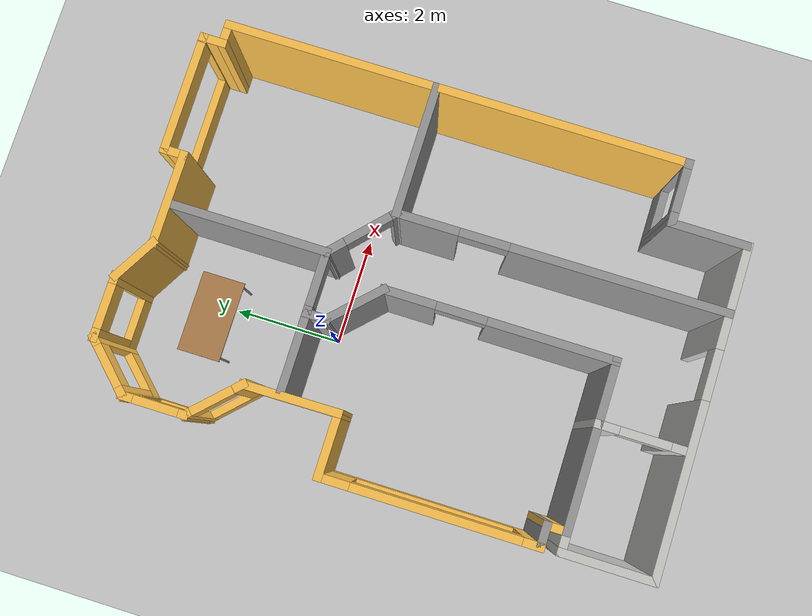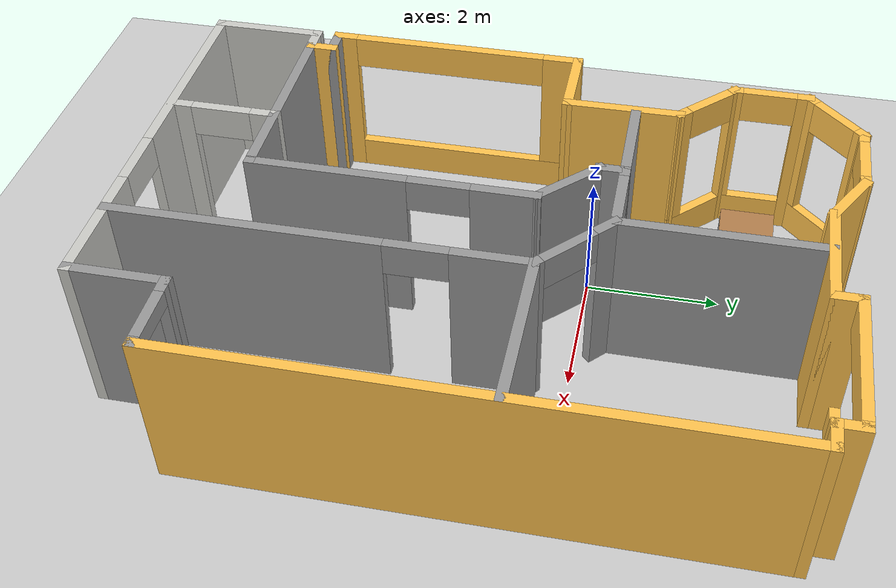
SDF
<sdf version="1.6">
 <world name="default">
  <model name="ground_plane">
   <static>1</static>
   <link name="link">
    <collision name="collision">
     <geometry><plane><normal>0 0 1</normal><size>100 100</size></plane></geometry>
     <surface><friction><ode><mu>100</mu><mu2>50</mu2></ode></friction></surface>
    </collision>
    <visual name="visual">
     <cast_shadows>0</cast_shadows>
     <geometry><plane><normal>0 0 1</normal><size>100 100</size></plane></geometry>
     <material>
      <script><uri>file://media/materials/scripts/gazebo.material</uri><name>Gazebo/Grey</name></script>
     </material>
    </visual>
   </link>
  </model>
  <model name="Building">
   <pose>1.08481 -1.31899 0 0 -0 0</pose>
   <link name="Wall_0">
    <pose>-0.54 -5.07803 0 0 -0 0</pose>
    <visual name="Wall_0_Visual_0">
     <pose>-1.40972 0 1.25 0 -0 0</pose>
     <geometry><box><size>3.18055 0.15 2.5</size></box></geometry>
     <material>
      <script><uri>file://media/materials/scripts/gazebo.material</uri><name>Gazebo/CeilingTiled</name></script>
      <ambient>1 1 1 1</ambient>
     </material>
     <meta><layer>0</layer></meta>
    </visual>
    <collision name="Wall_0_Collision_0">
     <geometry><box><size>3.18055 0.15 2.5</size></box></geometry>
     <pose>-1.40972 0 1.25 0 -0 0</pose>
    </collision>
    <visual name="Wall_0_Visual_1">
     <pose>2.04028 0 1.25 0 -0 0</pose>
     <geometry><box><size>1.91945 0.15 2.5</size></box></geometry>
     <material>
      <script><uri>file://media/materials/scripts/gazebo.material</uri><name>Gazebo/CeilingTiled</name></script>
      <ambient>1 1 1 1</ambient>
     </material>
     <meta><layer>0</layer></meta>
    </visual>
    <collision name="Wall_0_Collision_1">
     <geometry><box><size>1.91945 0.15 2.5</size></box></geometry>
     <pose>2.04028 0 1.25 0 -0 0</pose>
    </collision>
    <visual name="Wall_0_Visual_2">
     <pose>0.630554 0 2.25 0 -0 0</pose>
     <geometry><box><size>0.9 0.15 0.5</size></box></geometry>
     <material>
      <script><uri>file://media/materials/scripts/gazebo.material</uri><name>Gazebo/CeilingTiled</name></script>
      <ambient>1 1 1 1</ambient>
     </material>
     <meta><layer>0</layer></meta>
    </visual>
    <collision name="Wall_0_Collision_2">
     <geometry><box><size>0.9 0.15 0.5</size></box></geometry>
     <pose>0.630554 0 2.25 0 -0 0</pose>
    </collision>
   </link>
   <link name="Wall_1">
    <collision name="Wall_1_Collision">
     <geometry><box><size>1.5 0.15 2.5</size></box></geometry>
     <pose>0 0 1.25 0 -0 0</pose>
    </collision>
    <visual name="Wall_1_Visual">
     <pose>0 0 1.25 0 -0 0</pose>
     <geometry><box><size>1.5 0.15 2.5</size></box></geometry>
     <material>
      <script><uri>file://media/materials/scripts/gazebo.material</uri><name>Gazebo/Grey</name></script>
      <ambient>1 1 1 1</ambient>
     </material>
     <meta><layer>0</layer></meta>
    </visual>
    <pose>2.385 -4.40303 0 0 -0 1.5708</pose>
   </link>
   <link name="Wall_10">
    <pose>-1.85112 5.04697 0 0 -0 3.14159</pose>
    <visual name="Wall_10_Visual_0">
     <pose>-0.517736 0 1.25 0 -0 0</pose>
     <geometry><box><size>0.214528 0.15 2.5</size></box></geometry>
     <material>
      <script><uri>file://media/materials/scripts/gazebo.material</uri><name>Gazebo/Grey</name></script>
      <ambient>1 0.764706 0.305882 1</ambient>
     </material>
     <meta><layer>0</layer></meta>
    </visual>
    <collision name="Wall_10_Collision_0">
     <geometry><box><size>0.214528 0.15 2.5</size></box></geometry>
     <pose>-0.517736 0 1.25 0 -0 0</pose>
    </collision>
    <visual name="Wall_10_Visual_1">
     <pose>0.107264 0 0.25 0 -0 0</pose>
     <geometry><box><size>1.03547 0.15 0.5</size></box></geometry>
     <material>
      <script><uri>file://media/materials/scripts/gazebo.material</uri><name>Gazebo/Grey</name></script>
      <ambient>1 0.764706 0.305882 1</ambient>
     </material>
     <meta><layer>0</layer></meta>
    </visual>
    <collision name="Wall_10_Collision_1">
     <geometry><box><size>1.03547 0.15 0.5</size></box></geometry>
     <pose>0.107264 0 0.25 0 -0 0</pose>
    </collision>
    <visual name="Wall_10_Visual_2">
     <pose>0.507264 0 1.5 0 -0 0</pose>
     <geometry><box><size>0.235472 0.15 2</size></box></geometry>
     <material>
      <script><uri>file://media/materials/scripts/gazebo.material</uri><name>Gazebo/Grey</name></script>
      <ambient>1 0.764706 0.305882 1</ambient>
     </material>
     <meta><layer>0</layer></meta>
    </visual>
    <collision name="Wall_10_Collision_2">
     <geometry><box><size>0.235472 0.15 2</size></box></geometry>
     <pose>0.507264 0 1.5 0 -0 0</pose>
    </collision>
    <visual name="Wall_10_Visual_3">
     <pose>-0.010472 0 2.25 0 -0 0</pose>
     <geometry><box><size>0.8 0.15 0.5</size></box></geometry>
     <material>
      <script><uri>file://media/materials/scripts/gazebo.material</uri><name>Gazebo/Grey</name></script>
      <ambient>1 0.764706 0.305882 1</ambient>
     </material>
     <meta><layer>0</layer></meta>
    </visual>
    <collision name="Wall_10_Collision_3">
     <geometry><box><size>0.8 0.15 0.5</size></box></geometry>
     <pose>-0.010472 0 2.25 0 -0 0</pose>
    </collision>
   </link>
   <link name="Wall_11">
    <pose>-2.79003 4.65806 0 0 0 -2.35619</pose>
    <visual name="Wall_11_Visual_0">
     <pose>-0.516833 0 1.25 0 -0 0</pose>
     <geometry><box><size>0.216334 0.15 2.5</size></box></geometry>
     <material>
      <script><uri>file://media/materials/scripts/gazebo.material</uri><name>Gazebo/Grey</name></script>
      <ambient>1 0.764706 0.305882 1</ambient>
     </material>
     <meta><layer>0</layer></meta>
    </visual>
    <collision name="Wall_11_Collision_0">
     <geometry><box><size>0.216334 0.15 2.5</size></box></geometry>
     <pose>-0.516833 0 1.25 0 -0 0</pose>
    </collision>
    <visual name="Wall_11_Visual_1">
     <pose>0.108167 0 0.25 0 -0 0</pose>
     <geometry><box><size>1.03367 0.15 0.5</size></box></geometry>
     <material>
      <script><uri>file://media/materials/scripts/gazebo.material</uri><name>Gazebo/Grey</name></script>
      <ambient>1 0.764706 0.305882 1</ambient>
     </material>
     <meta><layer>0</layer></meta>
    </visual>
    <collision name="Wall_11_Collision_1">
     <geometry><box><size>1.03367 0.15 0.5</size></box></geometry>
     <pose>0.108167 0 0.25 0 -0 0</pose>
    </collision>
    <visual name="Wall_11_Visual_2">
     <pose>0.508167 0 1.5 0 -0 0</pose>
     <geometry><box><size>0.233666 0.15 2</size></box></geometry>
     <material>
      <script><uri>file://media/materials/scripts/gazebo.material</uri><name>Gazebo/Grey</name></script>
      <ambient>1 0.764706 0.305882 1</ambient>
     </material>
     <meta><layer>0</layer></meta>
    </visual>
    <collision name="Wall_11_Collision_2">
     <geometry><box><size>0.233666 0.15 2</size></box></geometry>
     <pose>0.508167 0 1.5 0 -0 0</pose>
    </collision>
    <visual name="Wall_11_Visual_3">
     <pose>-0.008666 0 2.25 0 -0 0</pose>
     <geometry><box><size>0.8 0.15 0.5</size></box></geometry>
     <material>
      <script><uri>file://media/materials/scripts/gazebo.material</uri><name>Gazebo/Grey</name></script>
      <ambient>1 0.764706 0.305882 1</ambient>
     </material>
     <meta><layer>0</layer></meta>
    </visual>
    <collision name="Wall_11_Collision_3">
     <geometry><box><size>0.8 0.15 0.5</size></box></geometry>
     <pose>-0.008666 0 2.25 0 -0 0</pose>
    </collision>
   </link>
   <link name="Wall_12">
    <pose>-3.17894 3.71915 0 0 0 -1.5708</pose>
    <visual name="Wall_12_Visual_0">
     <pose>-0.493695 0 1.25 0 -0 0</pose>
     <geometry><box><size>0.262609 0.15 2.5</size></box></geometry>
     <material>
      <script><uri>file://media/materials/scripts/gazebo.material</uri><name>Gazebo/Grey</name></script>
      <ambient>1 0.764706 0.305882 1</ambient>
     </material>
     <meta><layer>0</layer></meta>
    </visual>
    <collision name="Wall_12_Collision_0">
     <geometry><box><size>0.262609 0.15 2.5</size></box></geometry>
     <pose>-0.493695 0 1.25 0 -0 0</pose>
    </collision>
    <visual name="Wall_12_Visual_1">
     <pose>0.131305 0 0.25 0 -0 0</pose>
     <geometry><box><size>0.987391 0.15 0.5</size></box></geometry>
     <material>
      <script><uri>file://media/materials/scripts/gazebo.material</uri><name>Gazebo/Grey</name></script>
      <ambient>1 0.764706 0.305882 1</ambient>
     </material>
     <meta><layer>0</layer></meta>
    </visual>
    <collision name="Wall_12_Collision_1">
     <geometry><box><size>0.987391 0.15 0.5</size></box></geometry>
     <pose>0.131305 0 0.25 0 -0 0</pose>
    </collision>
    <visual name="Wall_12_Visual_2">
     <pose>0.531305 0 1.5 0 -0 0</pose>
     <geometry><box><size>0.187391 0.15 2</size></box></geometry>
     <material>
      <script><uri>file://media/materials/scripts/gazebo.material</uri><name>Gazebo/Grey</name></script>
      <ambient>1 0.764706 0.305882 1</ambient>
     </material>
     <meta><layer>0</layer></meta>
    </visual>
    <collision name="Wall_12_Collision_2">
     <geometry><box><size>0.187391 0.15 2</size></box></geometry>
     <pose>0.531305 0 1.5 0 -0 0</pose>
    </collision>
    <visual name="Wall_12_Visual_3">
     <pose>0.037609 0 2.25 0 -0 0</pose>
     <geometry><box><size>0.8 0.15 0.5</size></box></geometry>
     <material>
      <script><uri>file://media/materials/scripts/gazebo.material</uri><name>Gazebo/Grey</name></script>
      <ambient>1 0.764706 0.305882 1</ambient>
     </material>
     <meta><layer>0</layer></meta>
    </visual>
    <collision name="Wall_12_Collision_3">
     <geometry><box><size>0.8 0.15 0.5</size></box></geometry>
     <pose>0.037609 0 2.25 0 -0 0</pose>
    </collision>
   </link>
   <link name="Wall_13">
    <pose>-2.79003 2.78024 0 0 0 -0.785398</pose>
    <visual name="Wall_13_Visual_0">
     <pose>-0.532603 0 1.25 0 -0 0</pose>
     <geometry><box><size>0.184794 0.15 2.5</size></box></geometry>
     <material>
      <script><uri>file://media/materials/scripts/gazebo.material</uri><name>Gazebo/Grey</name></script>
      <ambient>1 0.764706 0.305882 1</ambient>
     </material>
     <meta><layer>0</layer></meta>
    </visual>
    <collision name="Wall_13_Collision_0">
     <geometry><box><size>0.184794 0.15 2.5</size></box></geometry>
     <pose>-0.532603 0 1.25 0 -0 0</pose>
    </collision>
    <visual name="Wall_13_Visual_1">
     <pose>0.092397 0 0.25 0 -0 0</pose>
     <geometry><box><size>1.06521 0.15 0.5</size></box></geometry>
     <material>
      <script><uri>file://media/materials/scripts/gazebo.material</uri><name>Gazebo/Grey</name></script>
      <ambient>1 0.764706 0.305882 1</ambient>
     </material>
     <meta><layer>0</layer></meta>
    </visual>
    <collision name="Wall_13_Collision_1">
     <geometry><box><size>1.06521 0.15 0.5</size></box></geometry>
     <pose>0.092397 0 0.25 0 -0 0</pose>
    </collision>
    <visual name="Wall_13_Visual_2">
     <pose>0.492397 0 1.5 0 -0 0</pose>
     <geometry><box><size>0.265206 0.15 2</size></box></geometry>
     <material>
      <script><uri>file://media/materials/scripts/gazebo.material</uri><name>Gazebo/Grey</name></script>
      <ambient>1 0.764706 0.305882 1</ambient>
     </material>
     <meta><layer>0</layer></meta>
    </visual>
    <collision name="Wall_13_Collision_2">
     <geometry><box><size>0.265206 0.15 2</size></box></geometry>
     <pose>0.492397 0 1.5 0 -0 0</pose>
    </collision>
    <visual name="Wall_13_Visual_3">
     <pose>-0.040206 0 2.25 0 -0 0</pose>
     <geometry><box><size>0.8 0.15 0.5</size></box></geometry>
     <material>
      <script><uri>file://media/materials/scripts/gazebo.material</uri><name>Gazebo/Grey</name></script>
      <ambient>1 0.764706 0.305882 1</ambient>
     </material>
     <meta><layer>0</layer></meta>
    </visual>
    <collision name="Wall_13_Collision_3">
     <geometry><box><size>0.8 0.15 0.5</size></box></geometry>
     <pose>-0.040206 0 2.25 0 -0 0</pose>
    </collision>
   </link>
   <link name="Wall_14">
    <collision name="Wall_14_Collision">
     <geometry><box><size>1.81944 0.15 2.5</size></box></geometry>
     <pose>0 0 1.25 0 -0 0</pose>
    </collision>
    <visual name="Wall_14_Visual">
     <pose>0 0 1.25 0 -0 0</pose>
     <geometry><box><size>1.81944 0.15 2.5</size></box></geometry>
     <material>
      <script><uri>file://media/materials/scripts/gazebo.material</uri><name>Gazebo/Grey</name></script>
      <ambient>1 0.764706 0.305882 1</ambient>
     </material>
     <meta><layer>0</layer></meta>
    </visual>
    <pose>-2.39306 1.55665 0 0 0 -1.56114</pose>
   </link>
   <link name="Wall_16">
    <collision name="Wall_16_Collision">
     <geometry><box><size>1.75 0.15 2.5</size></box></geometry>
     <pose>0 0 1.25 0 -0 0</pose>
    </collision>
    <visual name="Wall_16_Visual">
     <pose>0 0 1.25 0 -0 0</pose>
     <geometry><box><size>1.75 0.15 2.5</size></box></geometry>
     <material>
      <script><uri>file://media/materials/scripts/gazebo.material</uri><name>Gazebo/CeilingTiled</name></script>
      <ambient>1 0.764706 0.305882 1</ambient>
     </material>
     <meta><layer>0</layer></meta>
    </visual>
    <pose>-3.465 -4.27803 0 0 -0 1.5708</pose>
   </link>
   <link name="Wall_17">
    <collision name="Wall_17_Collision">
     <geometry><box><size>0.5 0.15 2.5</size></box></geometry>
     <pose>0 0 1.25 0 -0 0</pose>
    </collision>
    <visual name="Wall_17_Visual">
     <pose>0 0 1.25 0 -0 0</pose>
     <geometry><box><size>0.5 0.15 2.5</size></box></geometry>
     <material>
      <script><uri>file://media/materials/scripts/gazebo.material</uri><name>Gazebo/CeilingTiled</name></script>
      <ambient>1 0.764706 0.305882 1</ambient>
     </material>
     <meta><layer>0</layer></meta>
    </visual>
    <pose>-3.29 -3.47803 0 0 -0 0</pose>
   </link>
   <link name="Wall_18">
    <collision name="Wall_18_Collision">
     <geometry><box><size>0.5 0.15 2.5</size></box></geometry>
     <pose>0 0 1.25 0 -0 0</pose>
    </collision>
    <visual name="Wall_18_Visual">
     <pose>0 0 1.25 0 -0 0</pose>
     <geometry><box><size>0.5 0.15 2.5</size></box></geometry>
     <material>
      <script><uri>file://media/materials/scripts/gazebo.material</uri><name>Gazebo/Grey</name></script>
      <ambient>1 0.764706 0.305882 1</ambient>
     </material>
     <meta><layer>0</layer></meta>
    </visual>
    <pose>-3.115 -3.30303 0 0 -0 1.5708</pose>
   </link>
   <link name="Wall_19">
    <collision name="Wall_19_Collision">
     <geometry><box><size>0.5 0.15 2.5</size></box></geometry>
     <pose>0 0 1.25 0 -0 0</pose>
    </collision>
    <visual name="Wall_19_Visual">
     <pose>0 0 1.25 0 -0 0</pose>
     <geometry><box><size>0.5 0.15 2.5</size></box></geometry>
     <material>
      <script><uri>file://media/materials/scripts/gazebo.material</uri><name>Gazebo/Grey</name></script>
      <ambient>1 1 1 1</ambient>
     </material>
     <meta><layer>0</layer></meta>
    </visual>
    <pose>-3.29 -3.12803 0 0 -0 3.14159</pose>
   </link>
   <link name="Wall_2">
    <pose>2.935 -3.72803 0 0 -0 0</pose>
    <visual name="Wall_2_Visual_0">
     <pose>-0.486696 0 1.25 0 -0 0</pose>
     <geometry><box><size>0.276608 0.15 2.5</size></box></geometry>
     <material>
      <script><uri>file://media/materials/scripts/gazebo.material</uri><name>Gazebo/Grey</name></script>
      <ambient>1 1 1 1</ambient>
     </material>
     <meta><layer>0</layer></meta>
    </visual>
    <collision name="Wall_2_Collision_0">
     <geometry><box><size>0.276608 0.15 2.5</size></box></geometry>
     <pose>-0.486696 0 1.25 0 -0 0</pose>
    </collision>
    <visual name="Wall_2_Visual_1">
     <pose>0.138304 0 0.375 0 -0 0</pose>
     <geometry><box><size>0.973392 0.15 0.75</size></box></geometry>
     <material>
      <script><uri>file://media/materials/scripts/gazebo.material</uri><name>Gazebo/Grey</name></script>
      <ambient>1 1 1 1</ambient>
     </material>
     <meta><layer>0</layer></meta>
    </visual>
    <collision name="Wall_2_Collision_1">
     <geometry><box><size>0.973392 0.15 0.75</size></box></geometry>
     <pose>0.138304 0 0.375 0 -0 0</pose>
    </collision>
    <visual name="Wall_2_Visual_2">
     <pose>0.538304 0 1.625 0 -0 0</pose>
     <geometry><box><size>0.173392 0.15 1.75</size></box></geometry>
     <material>
      <script><uri>file://media/materials/scripts/gazebo.material</uri><name>Gazebo/Grey</name></script>
      <ambient>1 1 1 1</ambient>
     </material>
     <meta><layer>0</layer></meta>
    </visual>
    <collision name="Wall_2_Collision_2">
     <geometry><box><size>0.173392 0.15 1.75</size></box></geometry>
     <pose>0.538304 0 1.625 0 -0 0</pose>
    </collision>
    <visual name="Wall_2_Visual_3">
     <pose>0.051608 0 2.375 0 -0 0</pose>
     <geometry><box><size>0.8 0.15 0.25</size></box></geometry>
     <material>
      <script><uri>file://media/materials/scripts/gazebo.material</uri><name>Gazebo/Grey</name></script>
      <ambient>1 1 1 1</ambient>
     </material>
     <meta><layer>0</layer></meta>
    </visual>
    <collision name="Wall_2_Collision_3">
     <geometry><box><size>0.8 0.15 0.25</size></box></geometry>
     <pose>0.051608 0 2.375 0 -0 0</pose>
    </collision>
   </link>
   <link name="Wall_20">
    <pose>-3.485 -1.20303 0 0 -0 1.5708</pose>
    <visual name="Wall_20_Visual_0">
     <pose>-1.80879 0 1.25 0 -0 0</pose>
     <geometry><box><size>0.382416 0.15 2.5</size></box></geometry>
     <material>
      <script><uri>file://media/materials/scripts/gazebo.material</uri><name>Gazebo/Grey</name></script>
      <ambient>1 0.764706 0.305882 1</ambient>
     </material>
     <meta><layer>0</layer></meta>
    </visual>
    <collision name="Wall_20_Collision_0">
     <geometry><box><size>0.382416 0.15 2.5</size></box></geometry>
     <pose>-1.80879 0 1.25 0 -0 0</pose>
    </collision>
    <visual name="Wall_20_Visual_1">
     <pose>0.191208 0 0.25 0 -0 0</pose>
     <geometry><box><size>3.61758 0.15 0.5</size></box></geometry>
     <material>
      <script><uri>file://media/materials/scripts/gazebo.material</uri><name>Gazebo/Grey</name></script>
      <ambient>1 0.764706 0.305882 1</ambient>
     </material>
     <meta><layer>0</layer></meta>
    </visual>
    <collision name="Wall_20_Collision_1">
     <geometry><box><size>3.61758 0.15 0.5</size></box></geometry>
     <pose>0.191208 0 0.25 0 -0 0</pose>
    </collision>
    <visual name="Wall_20_Visual_2">
     <pose>1.69121 0 1.5 0 -0 0</pose>
     <geometry><box><size>0.617584 0.15 2</size></box></geometry>
     <material>
      <script><uri>file://media/materials/scripts/gazebo.material</uri><name>Gazebo/Grey</name></script>
      <ambient>1 0.764706 0.305882 1</ambient>
     </material>
     <meta><layer>0</layer></meta>
    </visual>
    <collision name="Wall_20_Collision_2">
     <geometry><box><size>0.617584 0.15 2</size></box></geometry>
     <pose>1.69121 0 1.5 0 -0 0</pose>
    </collision>
    <visual name="Wall_20_Visual_3">
     <pose>-0.117584 0 2.25 0 -0 0</pose>
     <geometry><box><size>3 0.15 0.5</size></box></geometry>
     <material>
      <script><uri>file://media/materials/scripts/gazebo.material</uri><name>Gazebo/Grey</name></script>
      <ambient>1 0.764706 0.305882 1</ambient>
     </material>
     <meta><layer>0</layer></meta>
    </visual>
    <collision name="Wall_20_Collision_3">
     <geometry><box><size>3 0.15 0.5</size></box></geometry>
     <pose>-0.117584 0 2.25 0 -0 0</pose>
    </collision>
   </link>
   <link name="Wall_22">
    <collision name="Wall_22_Collision">
     <geometry><box><size>1.25 0.15 2.5</size></box></geometry>
     <pose>0 0 1.25 0 -0 0</pose>
    </collision>
    <visual name="Wall_22_Visual">
     <pose>0 0 1.25 0 -0 0</pose>
     <geometry><box><size>1.25 0.15 2.5</size></box></geometry>
     <material>
      <script><uri>file://media/materials/scripts/gazebo.material</uri><name>Gazebo/Grey</name></script>
      <ambient>1 0.764706 0.305882 1</ambient>
     </material>
     <meta><layer>0</layer></meta>
    </visual>
    <pose>-2.935 0.721967 0 0 -0 0</pose>
   </link>
   <link name="Wall_26">
    <collision name="Wall_26_Collision">
     <geometry><box><size>2 0.15 2.5</size></box></geometry>
     <pose>0 0 1.25 0 -0 0</pose>
    </collision>
    <visual name="Wall_26_Visual">
     <pose>0 0 1.25 0 -0 0</pose>
     <geometry><box><size>2 0.15 2.5</size></box></geometry>
     <material>
      <script><uri>file://media/materials/scripts/gazebo.material</uri><name>Gazebo/Grey</name></script>
      <ambient>1 1 1 1</ambient>
     </material>
     <meta><layer>0</layer></meta>
    </visual>
    <pose>-2.19 -3.47803 0 0 -0 0</pose>
   </link>
   <link name="Wall_27">
    <pose>-1.265 -4.27803 0 0 0 -1.5708</pose>
    <visual name="Wall_27_Visual_0">
     <pose>-0.653637 0 1.25 0 -0 0</pose>
     <geometry><box><size>0.442727 0.15 2.5</size></box></geometry>
     <material>
      <script><uri>file://media/materials/scripts/gazebo.material</uri><name>Gazebo/CeilingTiled</name></script>
      <ambient>1 1 1 1</ambient>
     </material>
     <meta><layer>0</layer></meta>
    </visual>
    <collision name="Wall_27_Collision_0">
     <geometry><box><size>0.442727 0.15 2.5</size></box></geometry>
     <pose>-0.653637 0 1.25 0 -0 0</pose>
    </collision>
    <visual name="Wall_27_Visual_1">
     <pose>0.671363 0 1.25 0 -0 0</pose>
     <geometry><box><size>0.407273 0.15 2.5</size></box></geometry>
     <material>
      <script><uri>file://media/materials/scripts/gazebo.material</uri><name>Gazebo/CeilingTiled</name></script>
      <ambient>1 1 1 1</ambient>
     </material>
     <meta><layer>0</layer></meta>
    </visual>
    <collision name="Wall_27_Collision_1">
     <geometry><box><size>0.407273 0.15 2.5</size></box></geometry>
     <pose>0.671363 0 1.25 0 -0 0</pose>
    </collision>
    <visual name="Wall_27_Visual_2">
     <pose>0.017727 0 2.25 0 -0 0</pose>
     <geometry><box><size>0.9 0.15 0.5</size></box></geometry>
     <material>
      <script><uri>file://media/materials/scripts/gazebo.material</uri><name>Gazebo/CeilingTiled</name></script>
      <ambient>1 1 1 1</ambient>
     </material>
     <meta><layer>0</layer></meta>
    </visual>
    <collision name="Wall_27_Collision_2">
     <geometry><box><size>0.9 0.15 0.5</size></box></geometry>
     <pose>0.017727 0 2.25 0 -0 0</pose>
    </collision>
   </link>
   <link name="Wall_29">
    <collision name="Wall_29_Collision">
     <geometry><box><size>1.25 0.15 2.5</size></box></geometry>
     <pose>0 0 1.25 0 -0 0</pose>
    </collision>
    <visual name="Wall_29_Visual">
     <pose>0 0 1.25 0 -0 0</pose>
     <geometry><box><size>1.25 0.15 2.5</size></box></geometry>
     <material>
      <script><uri>file://media/materials/scripts/gazebo.material</uri><name>Gazebo/Grey</name></script>
      <ambient>1 1 1 1</ambient>
     </material>
     <meta><layer>0</layer></meta>
    </visual>
    <pose>-0.715 -3.47803 0 0 -0 0</pose>
   </link>
   <link name="Wall_3">
    <collision name="Wall_3_Collision">
     <geometry><box><size>8.5 0.15 2.5</size></box></geometry>
     <pose>0 0 1.25 0 -0 0</pose>
    </collision>
    <visual name="Wall_3_Visual">
     <pose>0 0 1.25 0 -0 0</pose>
     <geometry><box><size>8.5 0.15 2.5</size></box></geometry>
     <material>
      <script><uri>file://media/materials/scripts/gazebo.material</uri><name>Gazebo/Grey</name></script>
      <ambient>1 0.764706 0.305882 1</ambient>
     </material>
     <meta><layer>0</layer></meta>
    </visual>
    <pose>3.485 0.446967 0 0 -0 1.5708</pose>
   </link>
   <link name="Wall_30">
    <pose>-0.165 -1.42803 0 0 -0 1.5708</pose>
    <visual name="Wall_30_Visual_0">
     <pose>-0.949214 0 1.25 0 -0 0</pose>
     <geometry><box><size>2.35157 0.15 2.5</size></box></geometry>
     <material>
      <script><uri>file://media/materials/scripts/gazebo.material</uri><name>Gazebo/Grey</name></script>
      <ambient>1 1 1 1</ambient>
     </material>
     <meta><layer>0</layer></meta>
    </visual>
    <collision name="Wall_30_Collision_0">
     <geometry><box><size>2.35157 0.15 2.5</size></box></geometry>
     <pose>-0.949214 0 1.25 0 -0 0</pose>
    </collision>
    <visual name="Wall_30_Visual_1">
     <pose>1.62579 0 1.25 0 -0 0</pose>
     <geometry><box><size>0.998427 0.15 2.5</size></box></geometry>
     <material>
      <script><uri>file://media/materials/scripts/gazebo.material</uri><name>Gazebo/Grey</name></script>
      <ambient>1 1 1 1</ambient>
     </material>
     <meta><layer>0</layer></meta>
    </visual>
    <collision name="Wall_30_Collision_1">
     <geometry><box><size>0.998427 0.15 2.5</size></box></geometry>
     <pose>1.62579 0 1.25 0 -0 0</pose>
    </collision>
    <visual name="Wall_30_Visual_2">
     <pose>0.676573 0 2.25 0 -0 0</pose>
     <geometry><box><size>0.9 0.15 0.5</size></box></geometry>
     <material>
      <script><uri>file://media/materials/scripts/gazebo.material</uri><name>Gazebo/Grey</name></script>
      <ambient>1 1 1 1</ambient>
     </material>
     <meta><layer>0</layer></meta>
    </visual>
    <collision name="Wall_30_Collision_2">
     <geometry><box><size>0.9 0.15 0.5</size></box></geometry>
     <pose>0.676573 0 2.25 0 -0 0</pose>
    </collision>
   </link>
   <link name="Wall_31">
    <collision name="Wall_31_Collision">
     <geometry><box><size>1.25 0.15 2.5</size></box></geometry>
     <pose>0 0 1.25 0 -0 0</pose>
    </collision>
    <visual name="Wall_31_Visual">
     <pose>0 0 1.25 0 -0 0</pose>
     <geometry><box><size>1.25 0.15 2.5</size></box></geometry>
     <material>
      <script><uri>file://media/materials/scripts/gazebo.material</uri><name>Gazebo/Grey</name></script>
      <ambient>1 1 1 1</ambient>
     </material>
     <meta><layer>0</layer></meta>
    </visual>
    <pose>-0.553909 1.01088 0 0 -0 2.35619</pose>
   </link>
   <link name="Wall_32">
    <collision name="Wall_32_Collision">
     <geometry><box><size>0.5 0.15 2.5</size></box></geometry>
     <pose>0 0 1.25 0 -0 0</pose>
    </collision>
    <visual name="Wall_32_Visual">
     <pose>0 0 1.25 0 -0 0</pose>
     <geometry><box><size>0.5 0.15 2.5</size></box></geometry>
     <material>
      <script><uri>file://media/materials/scripts/gazebo.material</uri><name>Gazebo/Grey</name></script>
      <ambient>1 1 1 1</ambient>
     </material>
     <meta><layer>0</layer></meta>
    </visual>
    <pose>-0.942818 1.57479 0 0 -0 1.5708</pose>
   </link>
   <link name="Wall_33">
    <collision name="Wall_33_Collision">
     <geometry><box><size>1.5 0.15 2.5</size></box></geometry>
     <pose>0 0 1.25 0 -0 0</pose>
    </collision>
    <visual name="Wall_33_Visual">
     <pose>0 0 1.25 0 -0 0</pose>
     <geometry><box><size>1.5 0.15 2.5</size></box></geometry>
     <material>
      <script><uri>file://media/materials/scripts/gazebo.material</uri><name>Gazebo/Grey</name></script>
      <ambient>1 1 1 1</ambient>
     </material>
     <meta><layer>0</layer></meta>
    </visual>
    <pose>-1.61782 1.74978 0 0 -0 3.14159</pose>
   </link>
   <link name="Wall_35">
    <pose>-0.392818 1.74978 0 0 -0 0</pose>
    <visual name="Wall_35_Visual_0">
     <pose>-0.524612 0 1.25 0 -0 0</pose>
     <geometry><box><size>0.200777 0.15 2.5</size></box></geometry>
     <material>
      <script><uri>file://media/materials/scripts/gazebo.material</uri><name>Gazebo/Grey</name></script>
      <ambient>1 1 1 1</ambient>
     </material>
     <meta><layer>0</layer></meta>
    </visual>
    <collision name="Wall_35_Collision_0">
     <geometry><box><size>0.200777 0.15 2.5</size></box></geometry>
     <pose>-0.524612 0 1.25 0 -0 0</pose>
    </collision>
    <visual name="Wall_35_Visual_1">
     <pose>0.550388 0 1.25 0 -0 0</pose>
     <geometry><box><size>0.149223 0.15 2.5</size></box></geometry>
     <material>
      <script><uri>file://media/materials/scripts/gazebo.material</uri><name>Gazebo/Grey</name></script>
      <ambient>1 1 1 1</ambient>
     </material>
     <meta><layer>0</layer></meta>
    </visual>
    <collision name="Wall_35_Collision_1">
     <geometry><box><size>0.149223 0.15 2.5</size></box></geometry>
     <pose>0.550388 0 1.25 0 -0 0</pose>
    </collision>
    <visual name="Wall_35_Visual_2">
     <pose>0.025777 0 2.25 0 -0 0</pose>
     <geometry><box><size>0.9 0.15 0.5</size></box></geometry>
     <material>
      <script><uri>file://media/materials/scripts/gazebo.material</uri><name>Gazebo/Grey</name></script>
      <ambient>1 1 1 1</ambient>
     </material>
     <meta><layer>0</layer></meta>
    </visual>
    <collision name="Wall_35_Collision_2">
     <geometry><box><size>0.9 0.15 0.5</size></box></geometry>
     <pose>0.025777 0 2.25 0 -0 0</pose>
    </collision>
   </link>
   <link name="Wall_36">
    <collision name="Wall_36_Collision">
     <geometry><box><size>3 0.15 2.5</size></box></geometry>
     <pose>0 0 1.25 0 -0 0</pose>
    </collision>
    <visual name="Wall_36_Visual">
     <pose>0 0 1.25 0 -0 0</pose>
     <geometry><box><size>3 0.15 2.5</size></box></geometry>
     <material>
      <script><uri>file://media/materials/scripts/gazebo.material</uri><name>Gazebo/Grey</name></script>
      <ambient>1 1 1 1</ambient>
     </material>
     <meta><layer>0</layer></meta>
    </visual>
    <pose>0.157182 3.17478 0 0 -0 1.5708</pose>
   </link>
   <link name="Wall_38">
    <pose>1.16672 -2.12643 0 0 -0 1.57466</pose>
    <visual name="Wall_38_Visual_0">
     <pose>-1.04783 0 1.25 0 -0 0</pose>
     <geometry><box><size>3.93688 0.15 2.5</size></box></geometry>
     <material>
      <script><uri>file://media/materials/scripts/gazebo.material</uri><name>Gazebo/Grey</name></script>
      <ambient>1 1 1 1</ambient>
     </material>
     <meta><layer>0</layer></meta>
    </visual>
    <collision name="Wall_38_Collision_0">
     <geometry><box><size>3.93688 0.15 2.5</size></box></geometry>
     <pose>-1.04783 0 1.25 0 -0 0</pose>
    </collision>
    <visual name="Wall_38_Visual_1">
     <pose>2.41844 0 1.25 0 -0 0</pose>
     <geometry><box><size>1.19567 0.15 2.5</size></box></geometry>
     <material>
      <script><uri>file://media/materials/scripts/gazebo.material</uri><name>Gazebo/Grey</name></script>
      <ambient>1 1 1 1</ambient>
     </material>
     <meta><layer>0</layer></meta>
    </visual>
    <collision name="Wall_38_Collision_1">
     <geometry><box><size>1.19567 0.15 2.5</size></box></geometry>
     <pose>2.41844 0 1.25 0 -0 0</pose>
    </collision>
    <visual name="Wall_38_Visual_2">
     <pose>1.37061 0 2.25 0 -0 0</pose>
     <geometry><box><size>0.9 0.15 0.5</size></box></geometry>
     <material>
      <script><uri>file://media/materials/scripts/gazebo.material</uri><name>Gazebo/Grey</name></script>
      <ambient>1 1 1 1</ambient>
     </material>
     <meta><layer>0</layer></meta>
    </visual>
    <collision name="Wall_38_Collision_2">
     <geometry><box><size>0.9 0.15 0.5</size></box></geometry>
     <pose>1.37061 0 2.25 0 -0 0</pose>
    </collision>
   </link>
   <link name="Wall_39">
    <pose>0.656263 1.2823 0 0 -0 2.38888</pose>
    <visual name="Wall_39_Visual_0">
     <pose>-0.666538 0 1.25 0 -0 0</pose>
     <geometry><box><size>0.184579 0.15 2.5</size></box></geometry>
     <material>
      <script><uri>file://media/materials/scripts/gazebo.material</uri><name>Gazebo/Grey</name></script>
      <ambient>1 1 1 1</ambient>
     </material>
     <meta><layer>0</layer></meta>
    </visual>
    <collision name="Wall_39_Collision_0">
     <geometry><box><size>0.184579 0.15 2.5</size></box></geometry>
     <pose>-0.666538 0 1.25 0 -0 0</pose>
    </collision>
    <visual name="Wall_39_Visual_1">
     <pose>0.542289 0 1.25 0 -0 0</pose>
     <geometry><box><size>0.433076 0.15 2.5</size></box></geometry>
     <material>
      <script><uri>file://media/materials/scripts/gazebo.material</uri><name>Gazebo/Grey</name></script>
      <ambient>1 1 1 1</ambient>
     </material>
     <meta><layer>0</layer></meta>
    </visual>
    <collision name="Wall_39_Collision_1">
     <geometry><box><size>0.433076 0.15 2.5</size></box></geometry>
     <pose>0.542289 0 1.25 0 -0 0</pose>
    </collision>
    <visual name="Wall_39_Visual_2">
     <pose>-0.124249 0 2.25 0 -0 0</pose>
     <geometry><box><size>0.9 0.15 0.5</size></box></geometry>
     <material>
      <script><uri>file://media/materials/scripts/gazebo.material</uri><name>Gazebo/Grey</name></script>
      <ambient>1 1 1 1</ambient>
     </material>
     <meta><layer>0</layer></meta>
    </visual>
    <collision name="Wall_39_Collision_2">
     <geometry><box><size>0.9 0.15 0.5</size></box></geometry>
     <pose>-0.124249 0 2.25 0 -0 0</pose>
    </collision>
   </link>
   <link name="Wall_4">
    <collision name="Wall_4_Collision">
     <geometry><box><size>0.5 0.15 2.5</size></box></geometry>
     <pose>0 0 1.25 0 -0 0</pose>
    </collision>
    <visual name="Wall_4_Visual">
     <pose>0 0 1.25 0 -0 0</pose>
     <geometry><box><size>0.5 0.15 2.5</size></box></geometry>
     <material>
      <script><uri>file://media/materials/scripts/gazebo.material</uri><name>Gazebo/Grey</name></script>
      <ambient>1 0.764706 0.305882 1</ambient>
     </material>
     <meta><layer>0</layer></meta>
    </visual>
    <pose>3.31 4.62197 0 0 -0 3.14159</pose>
   </link>
   <link name="Wall_41">
    <collision name="Wall_41_Collision">
     <geometry><box><size>2.47946 0.15 2.5</size></box></geometry>
     <pose>0 0 1.25 0 -0 0</pose>
    </collision>
    <visual name="Wall_41_Visual">
     <pose>0 0 1.25 0 -0 0</pose>
     <geometry><box><size>2.47946 0.15 2.5</size></box></geometry>
     <material>
      <script><uri>file://media/materials/scripts/gazebo.material</uri><name>Gazebo/Grey</name></script>
      <ambient>1 1 1 1</ambient>
     </material>
     <meta><layer>0</layer></meta>
    </visual>
    <pose>2.32007 0.817744 0 0 0 -0.000281</pose>
   </link>
   <link name="Wall_5">
    <collision name="Wall_5_Collision">
     <geometry><box><size>0.5 0.15 2.5</size></box></geometry>
     <pose>0 0 1.25 0 -0 0</pose>
    </collision>
    <visual name="Wall_5_Visual">
     <pose>0 0 1.25 0 -0 0</pose>
     <geometry><box><size>0.5 0.15 2.5</size></box></geometry>
     <material>
      <script><uri>file://media/materials/scripts/gazebo.material</uri><name>Gazebo/Grey</name></script>
      <ambient>1 0.764706 0.305882 1</ambient>
     </material>
     <meta><layer>0</layer></meta>
    </visual>
    <pose>3.135 4.79697 0 0 -0 1.5708</pose>
   </link>
   <link name="Wall_6">
    <pose>2.085 4.97197 0 0 -0 3.14159</pose>
    <visual name="Wall_6_Visual_0">
     <pose>-1.04107 0 1.25 0 -0 0</pose>
     <geometry><box><size>0.167856 0.15 2.5</size></box></geometry>
     <material>
      <script><uri>file://media/materials/scripts/gazebo.material</uri><name>Gazebo/Grey</name></script>
      <ambient>1 0.764706 0.305882 1</ambient>
     </material>
     <meta><layer>0</layer></meta>
    </visual>
    <collision name="Wall_6_Collision_0">
     <geometry><box><size>0.167856 0.15 2.5</size></box></geometry>
     <pose>-1.04107 0 1.25 0 -0 0</pose>
    </collision>
    <visual name="Wall_6_Visual_1">
     <pose>0.083928 0 0.25 0 -0 0</pose>
     <geometry><box><size>2.08214 0.15 0.5</size></box></geometry>
     <material>
      <script><uri>file://media/materials/scripts/gazebo.material</uri><name>Gazebo/Grey</name></script>
      <ambient>1 0.764706 0.305882 1</ambient>
     </material>
     <meta><layer>0</layer></meta>
    </visual>
    <collision name="Wall_6_Collision_1">
     <geometry><box><size>2.08214 0.15 0.5</size></box></geometry>
     <pose>0.083928 0 0.25 0 -0 0</pose>
    </collision>
    <visual name="Wall_6_Visual_2">
     <pose>1.08393 0 1.5 0 -0 0</pose>
     <geometry><box><size>0.082144 0.15 2</size></box></geometry>
     <material>
      <script><uri>file://media/materials/scripts/gazebo.material</uri><name>Gazebo/Grey</name></script>
      <ambient>1 0.764706 0.305882 1</ambient>
     </material>
     <meta><layer>0</layer></meta>
    </visual>
    <collision name="Wall_6_Collision_2">
     <geometry><box><size>0.082144 0.15 2</size></box></geometry>
     <pose>1.08393 0 1.5 0 -0 0</pose>
    </collision>
    <visual name="Wall_6_Visual_3">
     <pose>0.042856 0 2.25 0 -0 0</pose>
     <geometry><box><size>2 0.15 0.5</size></box></geometry>
     <material>
      <script><uri>file://media/materials/scripts/gazebo.material</uri><name>Gazebo/Grey</name></script>
      <ambient>1 0.764706 0.305882 1</ambient>
     </material>
     <meta><layer>0</layer></meta>
    </visual>
    <collision name="Wall_6_Collision_3">
     <geometry><box><size>2 0.15 0.5</size></box></geometry>
     <pose>0.042856 0 2.25 0 -0 0</pose>
    </collision>
   </link>
   <link name="Wall_7">
    <collision name="Wall_7_Collision">
     <geometry><box><size>0.5 0.15 2.5</size></box></geometry>
     <pose>0 0 1.25 0 -0 0</pose>
    </collision>
    <visual name="Wall_7_Visual">
     <pose>0 0 1.25 0 -0 0</pose>
     <geometry><box><size>0.5 0.15 2.5</size></box></geometry>
     <material>
      <script><uri>file://media/materials/scripts/gazebo.material</uri><name>Gazebo/Grey</name></script>
      <ambient>1 0.764706 0.305882 1</ambient>
     </material>
     <meta><layer>0</layer></meta>
    </visual>
    <pose>1.035 4.79697 0 0 0 -1.5708</pose>
   </link>
   <link name="Wall_8">
    <collision name="Wall_8_Collision">
     <geometry><box><size>1.75 0.15 2.5</size></box></geometry>
     <pose>0 0 1.25 0 -0 0</pose>
    </collision>
    <visual name="Wall_8_Visual">
     <pose>0 0 1.25 0 -0 0</pose>
     <geometry><box><size>1.75 0.15 2.5</size></box></geometry>
     <material>
      <script><uri>file://media/materials/scripts/gazebo.material</uri><name>Gazebo/Grey</name></script>
      <ambient>1 0.764706 0.305882 1</ambient>
     </material>
     <meta><layer>0</layer></meta>
    </visual>
    <pose>0.235 4.62197 0 0 -0 3.14159</pose>
   </link>
   <link name="Wall_9">
    <collision name="Wall_9_Collision">
     <geometry><box><size>1 0.15 2.5</size></box></geometry>
     <pose>0 0 1.25 0 -0 0</pose>
    </collision>
    <visual name="Wall_9_Visual">
     <pose>0 0 1.25 0 -0 0</pose>
     <geometry><box><size>1 0.15 2.5</size></box></geometry>
     <material>
      <script><uri>file://media/materials/scripts/gazebo.material</uri><name>Gazebo/Grey</name></script>
      <ambient>1 0.764706 0.305882 1</ambient>
     </material>
     <meta><layer>0</layer></meta>
    </visual>
    <pose>-0.933061 4.83447 0 0 -0 2.61799</pose>
   </link>
   <static>1</static>
  </model>
  <model name="table_0">
   <static>1</static>
   <link name="link">
    <collision name="surface">
     <pose>0 0 1 0 -0 0</pose>
     <geometry><box><size>1.5 0.8 0.03</size></box></geometry>
     <surface><friction><ode><mu>0.6</mu><mu2>0.6</mu2></ode></friction></surface>
    </collision>
    <visual name="visual1">
     <pose>0 0 1 0 -0 0</pose>
     <geometry><box><size>1.5 0.8 0.03</size></box></geometry>
     <material>
      <script><uri>file://media/materials/scripts/gazebo.material</uri><name>Gazebo/Wood</name></script>
     </material>
    </visual>
    <collision name="front_left_leg">
     <pose>0.68 0.38 0.5 0 -0 0</pose>
     <geometry><cylinder><radius>0.02</radius><length>1</length></cylinder></geometry>
    </collision>
    <visual name="front_left_leg">
     <pose>0.68 0.38 0.5 0 -0 0</pose>
     <geometry><cylinder><radius>0.02</radius><length>1</length></cylinder></geometry>
     <material>
      <script><uri>file://media/materials/scripts/gazebo.material</uri><name>Gazebo/Grey</name></script>
     </material>
    </visual>
    <collision name="front_right_leg">
     <pose>0.68 -0.38 0.5 0 -0 0</pose>
     <geometry><cylinder><radius>0.02</radius><length>1</length></cylinder></geometry>
    </collision>
    <visual name="front_right_leg">
     <pose>0.68 -0.38 0.5 0 -0 0</pose>
     <geometry><cylinder><radius>0.02</radius><length>1</length></cylinder></geometry>
     <material>
      <script><uri>file://media/materials/scripts/gazebo.material</uri><name>Gazebo/Grey</name></script>
     </material>
    </visual>
    <collision name="back_right_leg">
     <pose>-0.68 -0.38 0.5 0 -0 0</pose>
     <geometry><cylinder><radius>0.02</radius><length>1</length></cylinder></geometry>
    </collision>
    <visual name="back_right_leg">
     <pose>-0.68 -0.38 0.5 0 -0 0</pose>
     <geometry><cylinder><radius>0.02</radius><length>1</length></cylinder></geometry>
     <material>
      <script><uri>file://media/materials/scripts/gazebo.material</uri><name>Gazebo/Grey</name></script>
     </material>
    </visual>
    <collision name="back_left_leg">
     <pose>-0.68 0.38 0.5 0 -0 0</pose>
     <geometry><cylinder><radius>0.02</radius><length>1</length></cylinder></geometry>
    </collision>
    <visual name="back_left_leg">
     <pose>-0.68 0.38 0.5 0 -0 0</pose>
     <geometry><cylinder><radius>0.02</radius><length>1</length></cylinder></geometry>
     <material>
      <script><uri>file://media/materials/scripts/gazebo.material</uri><name>Gazebo/Grey</name></script>
     </material>
    </visual>
   </link>
   <pose>-0.303336 2.26865 0 0 -0 0</pose>
  </model>
 </world>
</sdf>
